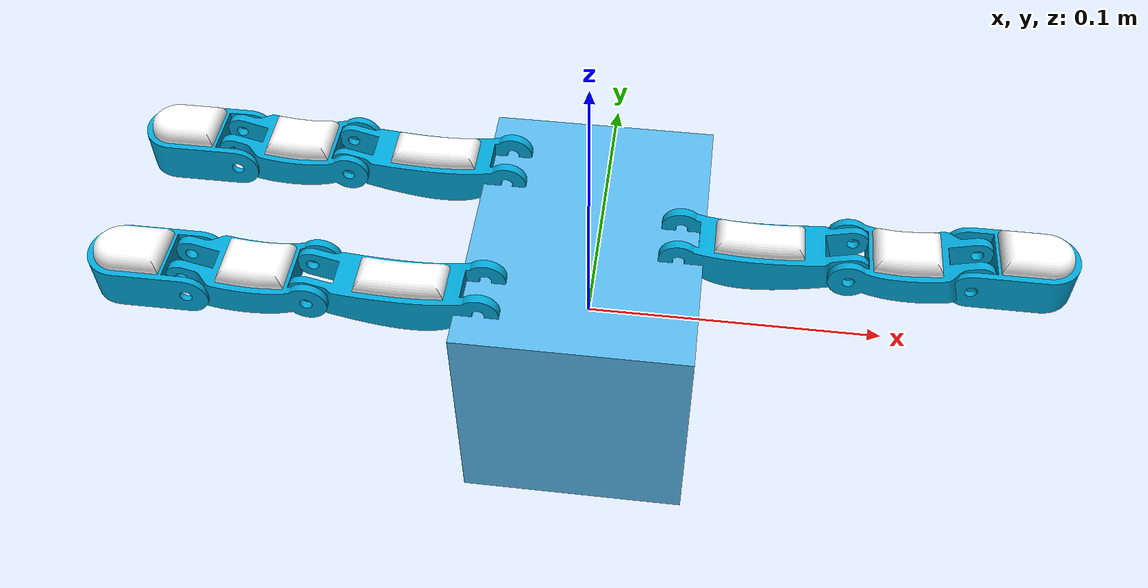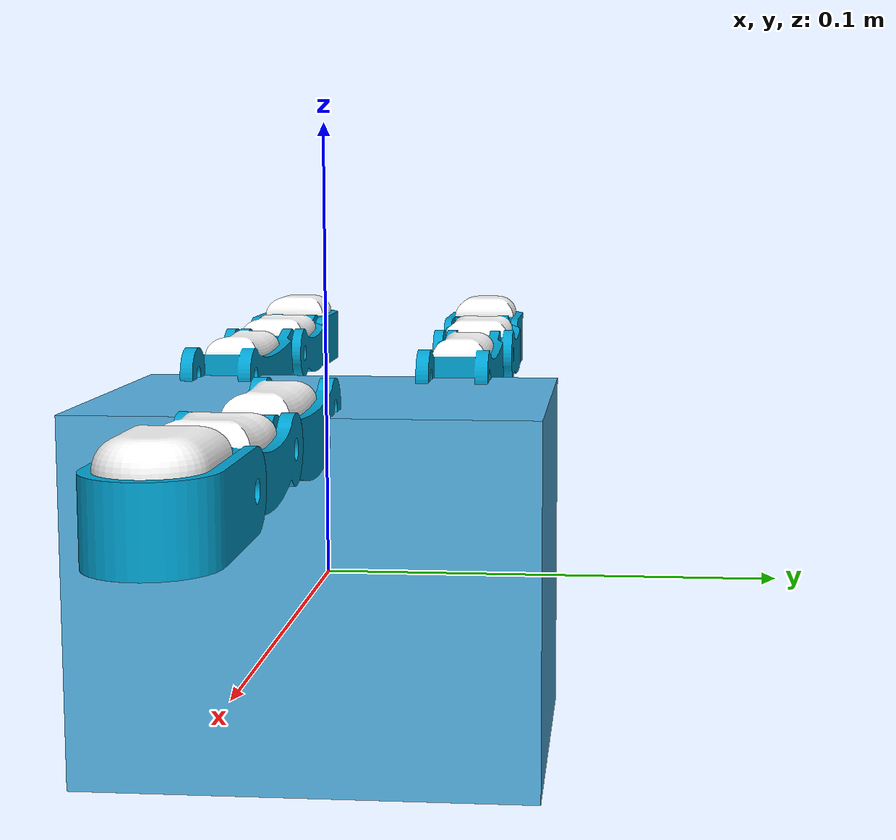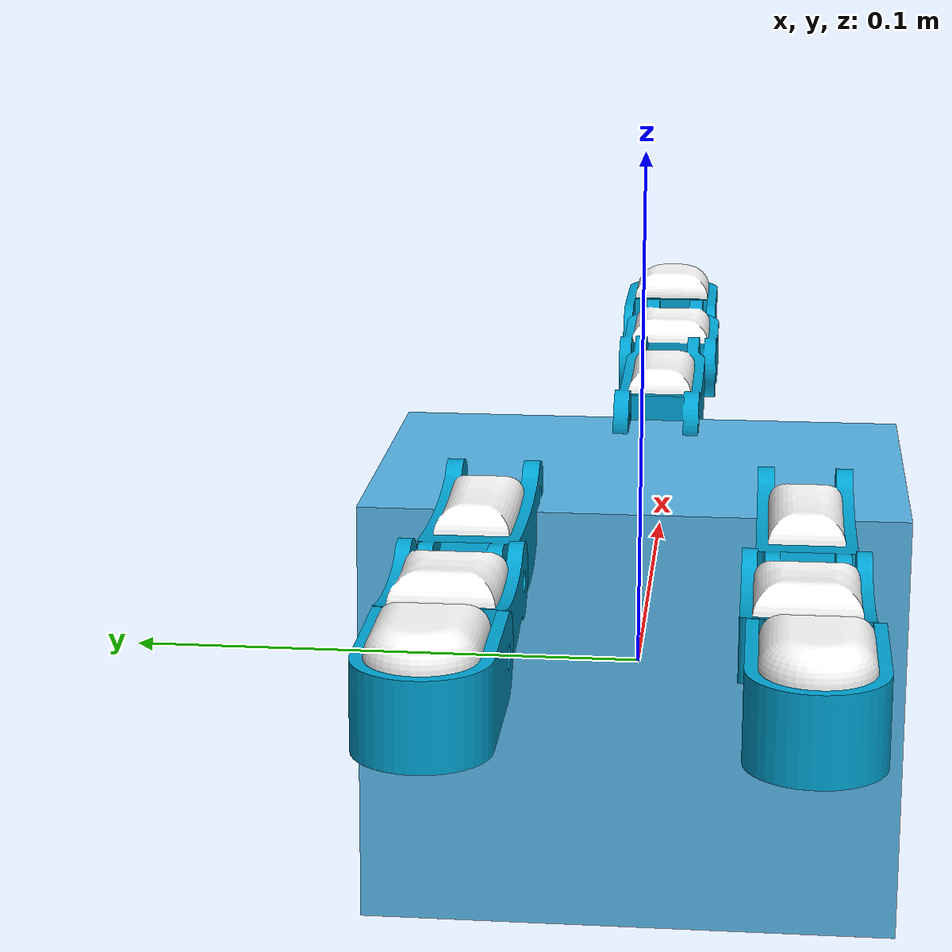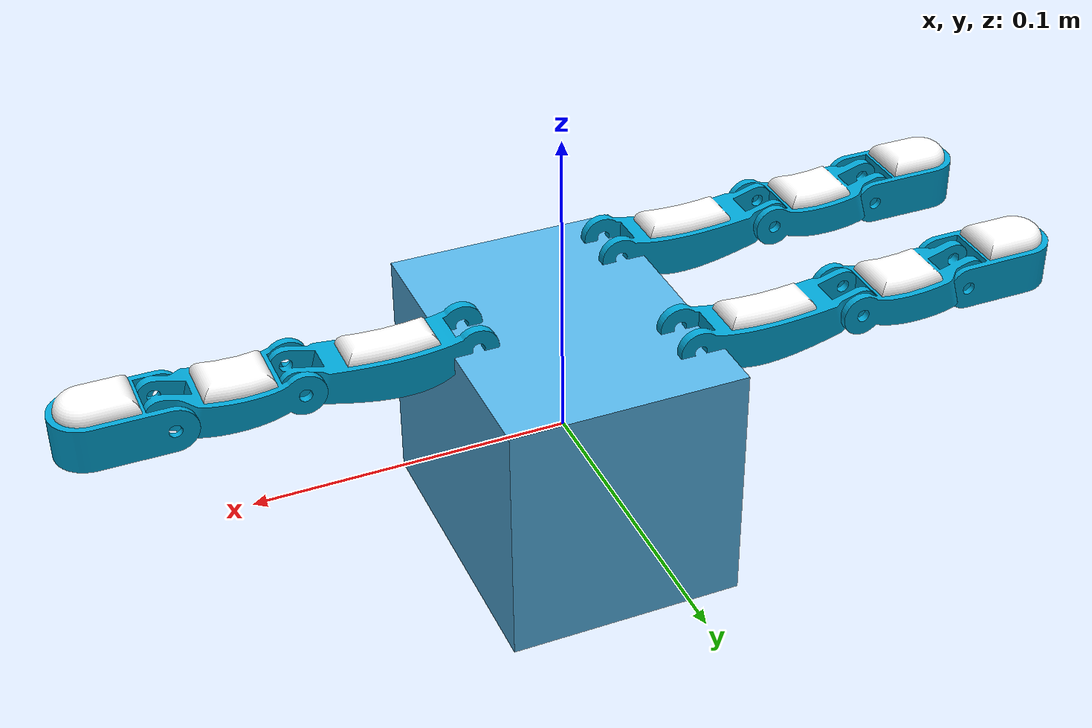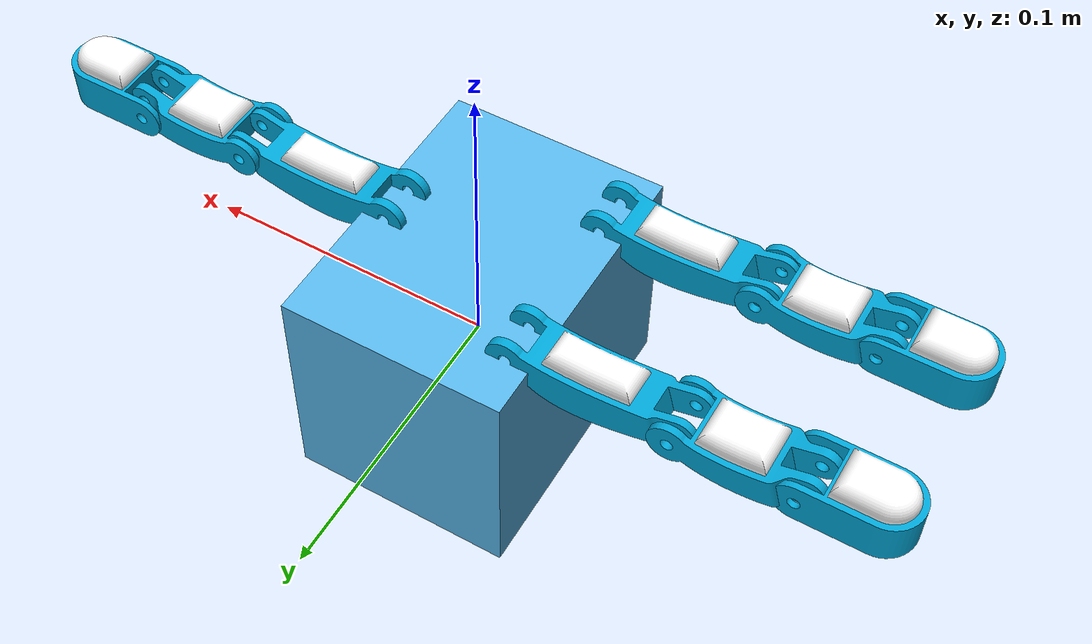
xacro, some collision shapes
<?xml version="1.0"?>
<robot xmlns:xacro="http://www.ros.org/wiki/xacro" name="gripper">

    <xacro:arg name="full_visuals" default="true"/>

    <!-- Include the robot macro -->
    <xacro:include filename="r3_robot.xacro"/>

    <!-- Base Properties -->
    <xacro:property name="m_base" value="1.0" />
    <xacro:property name="base_width" value="0.25" />
    <xacro:property name="base_depth" value="0.225" />
    <xacro:property name="base_height" value="0.08" />
    <xacro:property name="stack_height" value="0.08" />
    <xacro:property name="stack_width" value="0.075" />
    <xacro:property name="stack_depth" value="0.1" />

    <!-- Create three instances of the robot, rotated to form a gripper -->
    <xacro:r3_robot prefix="arm1" xyz="${-stack_width/2 + 0.014} ${-stack_depth/2 + 0.0175} ${0.5*(base_height)+stack_height}" rpy="${-pi2} 0 ${pi2}" />
    <xacro:r3_robot prefix="arm2" xyz="${ stack_width/2 - 0.014}  0.0              ${0.5*(base_height)+stack_height}" rpy="${-pi2} 0 ${-pi2}" />
    <xacro:r3_robot prefix="arm3" xyz="${-stack_width/2 + 0.014} ${ stack_depth/2 - 0.026} ${0.5*(base_height)+stack_height}" rpy="${-pi2} 0 ${pi2}" />

    <!-- Optionally, add a base link or other structure to connect the arms -->
    <link name="world"/>

    <link name="p1"/>
    <link name="p2"/>
    <link name="p3"/>

    <link name="drone">
        <collision>
            <origin xyz="0 0 ${base_height*0.25}" rpy="0 0 0"/>
            <geometry>
                <box size="${base_width} ${base_depth} ${0.5*base_height}"/>
            </geometry>
        </collision>
    </link>

    <link name="base">
        <visual>
            <geometry>
                <xacro:if value="$(arg full_visuals)">
                    <mesh filename="./meshes/FeelyDroneBase.dae"/>
                </xacro:if>
                <xacro:unless value="$(arg full_visuals)">
                    <box size="${base_width} ${base_depth} ${base_height}"/>
                </xacro:unless>
            </geometry>
        </visual>
        <collision>
            <origin xyz="0 0 ${base_height}" rpy="0 0 0"/>
            <geometry>
                <box size="${stack_width} ${stack_depth} ${stack_height}"/>
            </geometry>
        </collision>
        <inertial>
            <origin xyz="0 0 0" rpy="0 0 0"/>
            <mass value="${m_base}" />
            <inertia ixx="${1.0/12.0 * m_base * (base_height*base_height + base_depth*base_depth)}"
                     ixy="0.0" ixz="0.0"
                     iyy="${1.0/12.0 * m_base * (base_height*base_height + base_width*base_width)}"
                     iyz="0.0"
                     izz="${1.0/12.0 * m_base * (base_width*base_width + base_depth*base_depth)}" />
        </inertial>
    </link>

    <joint name="droneFixture" type="fixed">
        <parent link="drone"/>
        <child link="base"/>
    </joint>

    <joint name="x_pos" type="prismatic">
        <origin xyz="0 0 ${-stack_height}" rpy="0 0 0"/>
        <parent link="world" />
        <child link="p1" />
        <axis xyz="1 0 0"/>
        <limit lower="-100" upper="100" effort="100" velocity="100"/>
    </joint>

    <joint name="y_pos" type="prismatic">
        <parent link="p1" />
        <child link="p2" />
        <axis xyz="0 1 0"/>
        <limit lower="-100" upper="100" effort="100" velocity="100"/>
    </joint>

    <joint name="z_pos" type="prismatic">
        <parent link="p2" />
        <child link="p3" />
        <axis xyz="0 0 1"/>
        <limit lower="-100" upper="100" effort="100" velocity="100"/>
    </joint>

    <joint name="base_joint" type="continuous">
        <parent link="p3" />
        <child link="drone" />
        <axis xyz="0 0 1"/>
        <dynamics damping="100.0" friction="0.0"/>
    </joint>

    <joint name="arm1_fix" type="fixed">
        <parent link="base" />
        <child link="arm1_base" />
    </joint>
    <joint name="arm2_fix" type="fixed">
        <parent link="base" />
        <child link="arm2_base" />
    </joint>
    <joint name="arm3_fix" type="fixed">
        <parent link="base" />
        <child link="arm3_base" />
    </joint>
</robot>

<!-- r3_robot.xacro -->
<robot xmlns:xacro="http://www.ros.org/wiki/xacro">

    <xacro:property name="pi2" value="${pi * 0.5}" />

    <xacro:property name="width" value="0.01" />
    <xacro:property name="l1" value="0.055" />
    <xacro:property name="l2" value="0.04" />
    <xacro:property name="l3" value="0.045" />

    <xacro:property name="m1" value="0.1" />
    <xacro:property name="m2" value="0.1" />
    <xacro:property name="m3" value="0.1" />

    <!-- Wrap the entire robot definition in a macro -->
    <xacro:macro name="r3_robot" params="prefix xyz rpy">
        <link name="${prefix}_base"/>

        <link name="${prefix}_link1">
            <visual>
                <xacro:if value="$(arg full_visuals)">
                    <origin xyz="${-width * 0.5} ${0.0} ${l1 * 0.5}" rpy="0 ${pi2} 0"/>
                    <geometry>
                        <mesh filename="./meshes/ProximalPhalang.dae"/>
                    </geometry>
                </xacro:if>
                <xacro:unless value="$(arg full_visuals)">
                    <origin xyz="0 0 ${l1 * 0.5}" rpy="0 0 0"/>
                    <geometry>
                        <cylinder radius="${width}" length="${l1}"/>
                    </geometry>
                </xacro:unless>
            </visual>
            <collision>
                <origin xyz="0 0 ${l1 * 0.5}" rpy="0 0 0"/>
                <geometry>
                    <cylinder radius="${width}" length="${l1}"/>
                </geometry>
            </collision>
            <inertial>
                <origin xyz="0 0 ${l1 * 0.5}" rpy="0 0 0"/>
                <mass value="${m1}" />
                <inertia ixx="${1.0/12.0 * m1 * (3 * width*width + l1*l1)}"
                        ixy="0.0" ixz="0.0"
                        iyy="${1.0/12.0 * m1 * (3 * width*width + l1*l1)}"
                        iyz="0.0"
                        izz="${1.0/2.0 * m1 * l1*l1}" />
            </inertial>
        </link>
        <link name="${prefix}_link2">
            <visual>
                <xacro:if value="$(arg full_visuals)">
                    <origin xyz="${width * 0.4} 0 ${l2 * 0.5}" rpy="0 ${pi2} 0"/>
                    <geometry>
                        <mesh filename="./meshes/MiddlePhalang.dae"/>
                    </geometry>
                </xacro:if>

                <xacro:unless value="$(arg full_visuals)">
                    <origin xyz="0 0 ${l2 * 0.5}" rpy="0 0 0"/>
                    <geometry>
                        <cylinder radius="${width}" length="${l2}"/>
                    </geometry>
                </xacro:unless>
            </visual>
            <collision>
                <origin xyz="0 0 ${l2 * 0.5}" rpy="0 0 0"/>
                <geometry>
                    <cylinder radius="${width}" length="${l2}"/>
                </geometry>
            </collision>
            <inertial>
                <origin xyz="0 0 ${l2 * 0.5}" rpy="0 0 0"/>
                <mass value="${m2}" />
                <inertia ixx="${1.0/12.0 * m2 * (3 * width*width + l2*l2)}"
                        ixy="0.0" ixz="0.0"
                        iyy="${1.0/12.0 * m2 * (3 * width*width + l2*l2)}"
                        iyz="0.0"
                        izz="${1.0/2.0 * m2 * l2*l2}" />
            </inertial>
        </link>
        <link name="${prefix}_link3">
            <visual>
                <xacro:if value="$(arg full_visuals)">
                    <origin xyz="-0.0026 0.0082 ${l3 * 0.25}" rpy="0 ${pi2} ${-pi2}"/>
                    <geometry>
                        <mesh filename="./meshes/DistalPhalang.dae"/>
                    </geometry>
                </xacro:if>

                <xacro:unless value="$(arg full_visuals)">
                    <origin xyz="0 0 ${l3 * 0.5}" rpy="0 0 0"/>
                    <geometry>
                        <cylinder radius="${width}" length="${l3}"/>
                    </geometry>
                </xacro:unless>
            </visual>
            <collision>
                <origin xyz="0 0 ${l3 * 0.5}" rpy="0 0 0"/>
                <geometry>
                    <cylinder radius="${width}" length="${l3}"/>
                </geometry>
            </collision>
            <inertial>
                <origin xyz="0 0 ${l3 * 0.5}" rpy="0 0 0"/>
                <mass value="${m3}" />
                <inertia ixx="${1.0/12.0 * m3 * (3 * width*width + l3*l3)}"
                        ixy="0.0" ixz="0.0"
                        iyy="${1.0/12.0 * m3 * (3 * width*width + l3*l3)}"
                        iyz="0.0"
                        izz="${1.0/2.0 * m3 * l3*l3}" />
            </inertial>
        </link>

        <joint name="${prefix}_joint1" type="revolute">
            <parent link="${prefix}_base" />
            <child link="${prefix}_link1" />
            <limit effort="30" velocity="1.0" lower="${0}" upper="${pi}" />
            <origin xyz="${xyz}" rpy="${rpy}" />
            <axis xyz="1 0 0" />
        </joint>
        <joint name="${prefix}_joint2" type="revolute">
            <parent link="${prefix}_link1" />
            <child link="${prefix}_link2" />
            <limit effort="30" velocity="1.0" lower="${0}" upper="${pi}" />
            <origin xyz="0 0 ${l1}" rpy="0 0 0" />
            <axis xyz="1 0 0" />
        </joint>
        <joint name="${prefix}_joint3" type="revolute">
            <parent link="${prefix}_link2" />
            <child link="${prefix}_link3" />
            <limit effort="30" velocity="1.0" lower="${0}" upper="${pi}" />
            <origin xyz="0 0 ${l2}" rpy="0 0 0" />
            <axis xyz="1 0 0" />
        </joint>

    </xacro:macro>
</robot>
